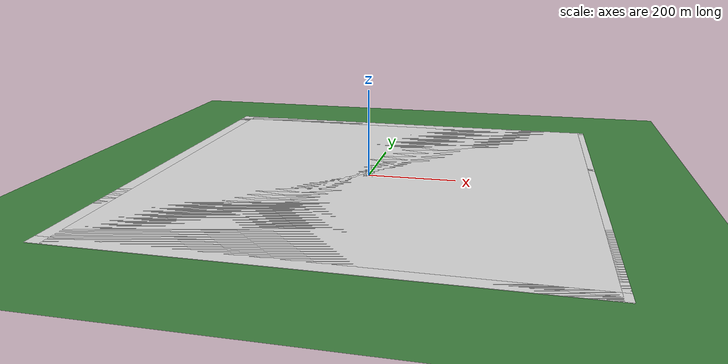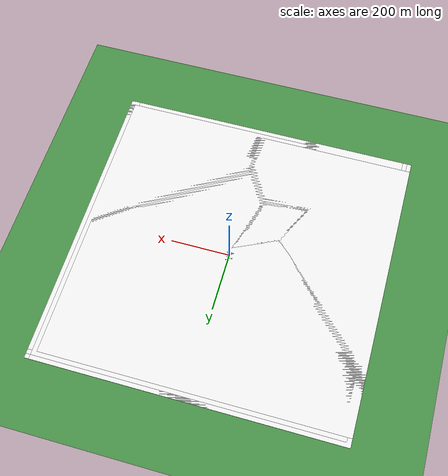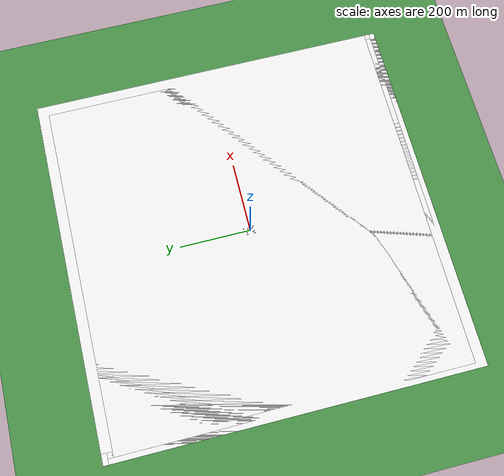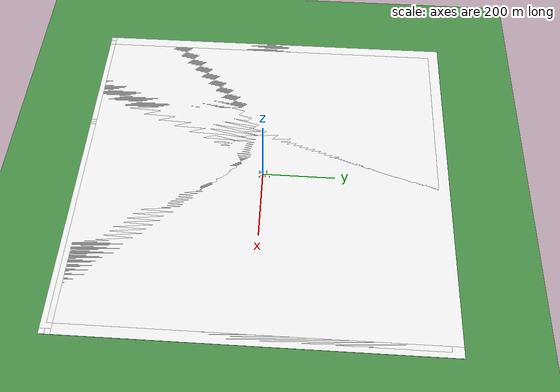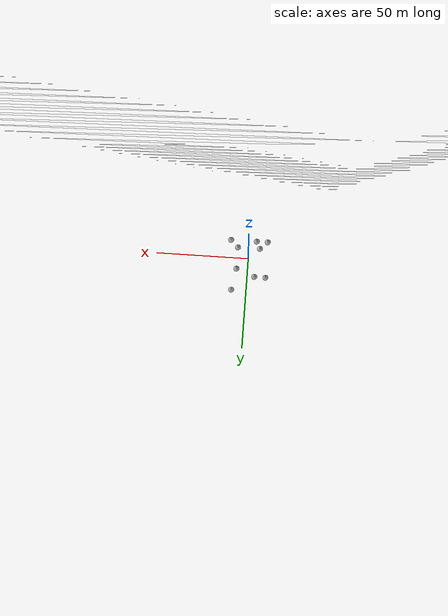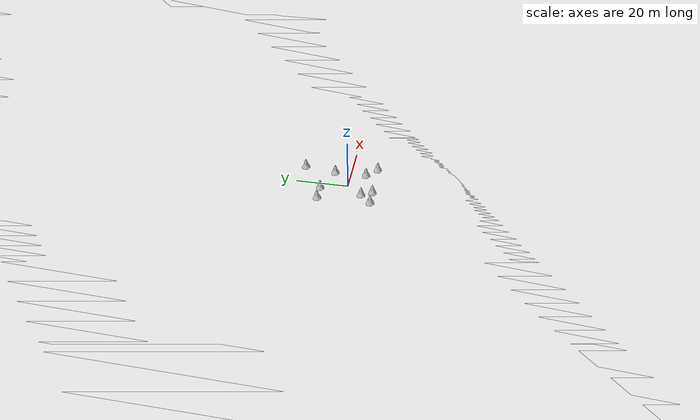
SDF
<sdf version="1.9">
 <world name="default">
  <physics name="default_physics" default="true" type="ode">
   <max_step_size>0.004</max_step_size>
   <real_time_factor>1.0</real_time_factor>
   <real_time_update_rate>250</real_time_update_rate>
  </physics>
  <model name="ground_plane">
   <static>1</static>
   <link name="link">
    <collision name="collision">
     <geometry><plane><normal>0 0 1</normal><size>40 40</size></plane></geometry>
     <surface><friction><ode><mu>100</mu><mu2>50</mu2></ode></friction></surface>
    </collision>
    <visual name="visual">
     <cast_shadows>0</cast_shadows>
     <geometry><plane><normal>0 0 1</normal><size>40 40</size></plane></geometry>
     <material>
      <ambient>0.25 0.5 0.25 1</ambient>
      <diffuse>0.3 0.6 0.3 1</diffuse>
      <specular>0.05 0.05 0.05 1</specular>
     </material>
    </visual>
   </link>
  </model>
  <model name="grasspatch_01">
   <include><uri>model://grasspatch</uri></include>
   <pose>-15 15 0 0 0 0</pose>
  </model>
  <model name="grasspatch_02"><include><uri>model://grasspatch</uri></include><pose>0 15 0 0 0 0</pose></model>
  <model name="grasspatch_03"><include><uri>model://grasspatch</uri></include><pose>15 15 0 0 0 0</pose></model>
  <model name="grasspatch_04"><include><uri>model://grasspatch</uri></include><pose>-15 0 0 0 0 0</pose></model>
  <model name="grasspatch_05"><include><uri>model://grasspatch</uri></include></model>
  <model name="grasspatch_06"><include><uri>model://grasspatch</uri></include><pose>15 0 0 0 0 0</pose></model>
  <model name="grasspatch_07">
   <include><uri>model://grasspatch</uri></include>
   <pose>-15 -15 0 0 0 0</pose>
  </model>
  <model name="grasspatch_08"><include><uri>model://grasspatch</uri></include><pose>0 -15 0 0 0 0</pose></model>
  <model name="grasspatch_09">
   <include><uri>model://grasspatch</uri></include>
   <pose>15 -15 0 0 0 0</pose>
  </model>
  <model name="pine_tree_01">
   <include><uri>model://pine_tree</uri></include>
   <pose>-6.0 -6.0 0 0 0 0</pose>
  </model>
  <model name="pine_tree_02"><include><uri>model://pine_tree</uri></include><pose>6.0 6.0 0 0 0 0</pose></model>
  <model name="pine_tree_03">
   <include><uri>model://pine_tree</uri></include>
   <pose>6.0 -6.0 0 0 0 0</pose>
  </model>
  <model name="pine_tree_04">
   <include><uri>model://pine_tree</uri></include>
   <pose>-10.0 10.0 0 0 0 0</pose>
  </model>
  <model name="pine_tree_05">
   <include><uri>model://pine_tree</uri></include>
   <pose>8.0 18.0 0 0 0 0</pose>
  </model>
  <model name="pine_tree_06">
   <include><uri>model://pine_tree</uri></include>
   <pose>-10.0 -10.0 0 0 0 0</pose>
  </model>
  <model name="pine_tree_07">
   <include><uri>model://pine_tree</uri></include>
   <pose>10.0 -10.0 0 0 0 0</pose>
  </model>
  <model name="pine_tree_08">
   <include><uri>model://pine_tree</uri></include>
   <pose>-4.0 10.0 0 0 0 0</pose>
  </model>
  <model name="pine_tree_09">
   <include><uri>model://pine_tree</uri></include>
   <pose>-4.0 -10.0 0 0 0 0</pose>
  </model>
  <light type="directional" name="sun">
   <pose>0 0 10 0 0 0</pose>
   <diffuse>0.8 0.8 0.8 1</diffuse>
   <specular>0.2 0.2 0.2 1</specular>
   <attenuation>
    <range>1000</range>
    <constant>0.9</constant>
    <linear>0.01</linear>
    <quadratic>0.001</quadratic>
   </attenuation>
   <direction>-0.5 0.1 -0.9</direction>
  </light>
  <gravity>0 0 -9.8</gravity>
  <magnetic_field>6e-06 2.3e-05 -4.2e-05</magnetic_field>
  <spherical_coordinates>
   <surface_model>EARTH_WGS84</surface_model>
   <latitude_deg>0</latitude_deg>
   <longitude_deg>0</longitude_deg>
   <elevation>0</elevation>
   <heading_deg>0</heading_deg>
  </spherical_coordinates>
  <atmosphere type="adiabatic"/>
  <scene>
   <ambient>0.4 0.4 0.4 1</ambient>
   <background>0.7 0.7 0.7 1</background>
   <shadows>true</shadows>
   <grid>false</grid>
  </scene>
 </world>
</sdf>

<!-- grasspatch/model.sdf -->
<sdf version='1.4'>
  <model name='grasspatch'>
    <static>true</static>
    <link name='link'>
      <collision name='collision'>
        <pose>0 0 0 0 0 0</pose>
        <geometry>
          <plane>
            <normal>0 0 1</normal>
            <size>1000 1000</size>
          </plane>
        </geometry>
        <surface>
          <friction>
            <ode>
              <mu>0.5</mu>
              <mu2>.5</mu2>
            </ode>
          </friction>
        </surface>
      </collision>

      <visual name='visual_s10'>
        <pose>0 0 0 0 0 0</pose>
        <cast_shadows>false</cast_shadows>
        <geometry>
          <plane>
            <normal>0 0 1</normal>
            <size>1000 1000</size>
          </plane>
        </geometry>
          <material>
         <diffuse>1.0 1.0 1.0</diffuse>
          <specular>1.0 1.0 1.0</specular>
		  <pbr>
			<metal>
			   <albedo_map>materials/textures/grass_dry.png</albedo_map>
			   <normal_map>materials/textures/grass_dry.png</normal_map>
			</metal>
		  </pbr>
		</material>
      </visual>

    </link>
  </model>
</sdf>

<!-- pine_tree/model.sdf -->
<sdf version="1.6">
  <model name="pine_tree">
    <static>true</static>
    <link name="link">
      <collision name="collision">
        <geometry>
          <mesh>
            <uri>file://isr-testbed/pine_tree/meshes/pine_tree.dae</uri>
          </mesh>
        </geometry>
      </collision>
      <visual name="branch">
        <geometry>
          <mesh>
            <uri>file://isr-testbed/pine_tree/meshes/pine_tree.dae</uri>
            <submesh>
              <name>Branch</name>
            </submesh>
          </mesh>
        </geometry>
        <material>
          <script>
            <uri>file://isr-testbed/pine_tree/materials/scripts/</uri>
            <uri>file://isr-testbed/pine_tree/materials/textures/</uri>
            <name>PineTree/Branch</name>
          </script>
        </material>
      </visual>
      <visual name="bark">
        <geometry>
          <mesh>
            <uri>file://isr-testbed/pine_tree/meshes/pine_tree.dae</uri>
            <submesh>
              <name>Bark</name>
            </submesh>
          </mesh>
        </geometry>
        <material>
          <script>
            <uri>file://isr-testbed/pine_tree/materials/scripts/</uri>
            <uri>file://isr-testbed/pine_tree/materials/textures/</uri>
            <name>PineTree/Bark</name>
          </script>
        </material>
      </visual>
    </link>
  </model>
</sdf>
